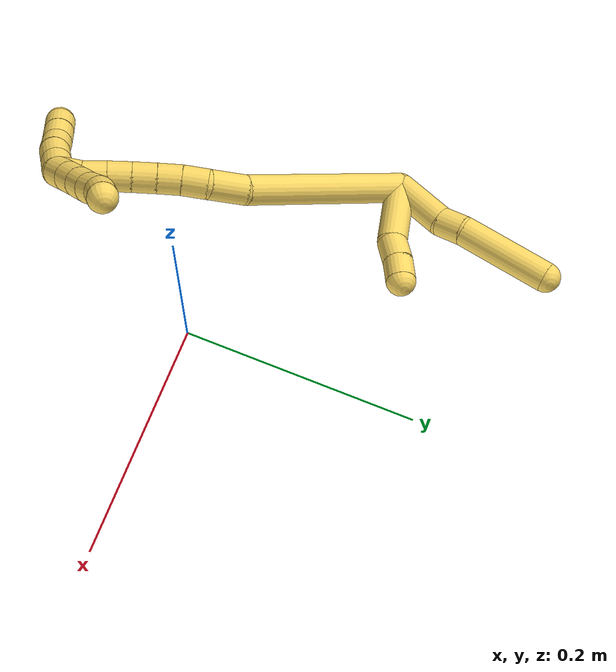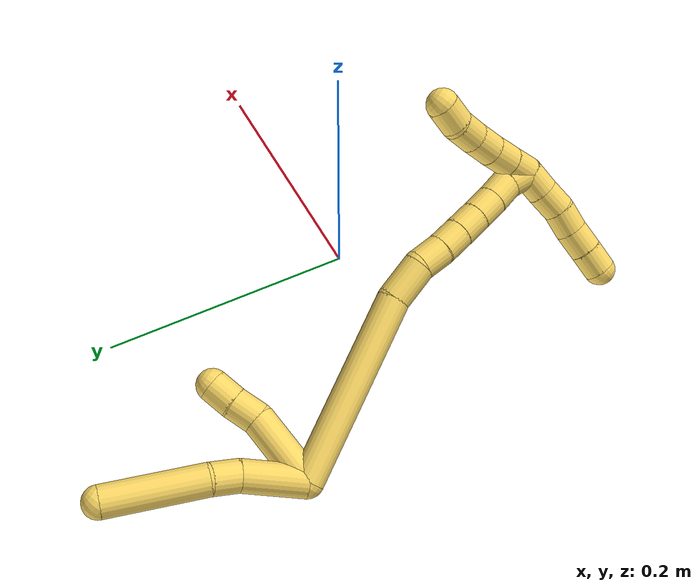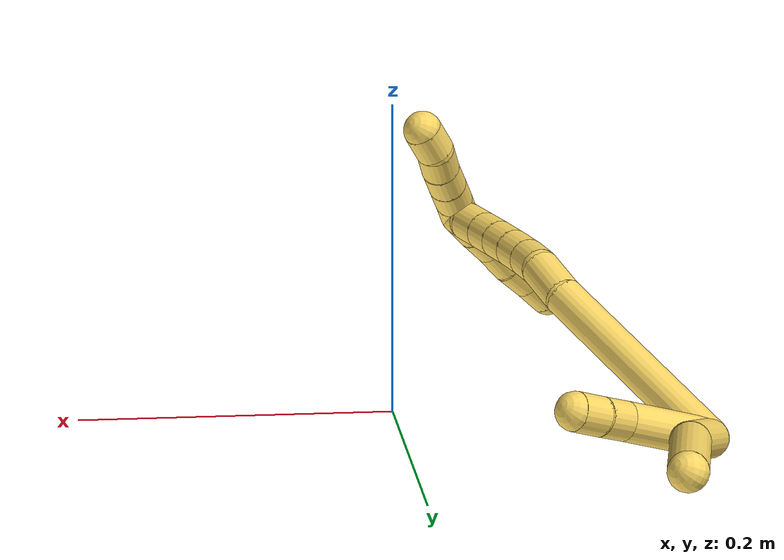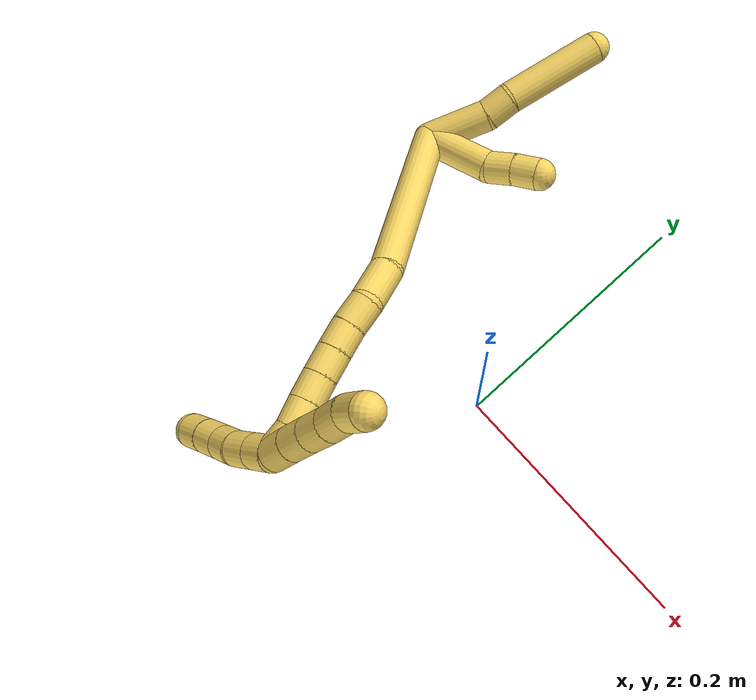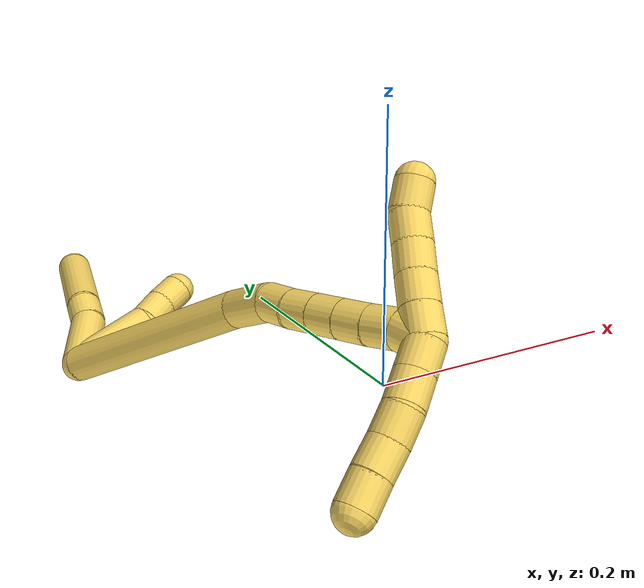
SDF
<sdf version="1.7">
 <world name="default">
  <model name="5">
   <static>0</static>
   <link name="5">
    <collision name="collision-cylinder-e_1_2_8">
     <pose>-0.000449 0.013087 -0.021009 -2.58447 -0.018137 0.063398</pose>
     <geometry><cylinder><radius>0.0125</radius><length>0.049511</length></cylinder></geometry>
     <surface>
      <friction><ode><mu>1.16</mu><mu2>1.16</mu2><slip1>0</slip1><slip2>0</slip2></ode></friction>
      <contact><ode><kp>1e+06</kp><kd>1</kd><max_vel>0</max_vel><min_depth>0.001</min_depth></ode></contact>
     </surface>
    </collision>
    <visual name="visual-cylinder-e_1_2_8">
     <pose>-0.000449 0.013087 -0.021009 -2.58447 -0.018137 0.063398</pose>
     <geometry><cylinder><radius>0.0125</radius><length>0.049511</length></cylinder></geometry>
     <material><ambient>1 0.858824 0.4 1</ambient></material>
    </visual>
    <collision name="collision-cylinder-e_2_8_9">
     <pose>0.001048 0.03366 -0.049963 -2.38604 0.176396 -0.438499</pose>
     <geometry><cylinder><radius>0.0125</radius><length>0.022177</length></cylinder></geometry>
     <surface>
      <friction><ode><mu>1.16</mu><mu2>1.16</mu2><slip1>0</slip1><slip2>0</slip2></ode></friction>
      <contact><ode><kp>1e+06</kp><kd>1</kd><max_vel>0</max_vel><min_depth>0.001</min_depth></ode></contact>
     </surface>
    </collision>
    <visual name="visual-cylinder-e_2_8_9">
     <pose>0.001048 0.03366 -0.049963 -2.38604 0.176396 -0.438499</pose>
     <geometry><cylinder><radius>0.0125</radius><length>0.022177</length></cylinder></geometry>
     <material><ambient>1 0.858824 0.4 1</ambient></material>
    </visual>
    <collision name="collision-cylinder-e_3_9_6">
     <pose>0.00218 0.070431 -0.083887 -2.29641 -0.020795 0.046237</pose>
     <geometry><cylinder><radius>0.0125</radius><length>0.078312</length></cylinder></geometry>
     <surface>
      <friction><ode><mu>1.16</mu><mu2>1.16</mu2><slip1>0</slip1><slip2>0</slip2></ode></friction>
      <contact><ode><kp>1e+06</kp><kd>1</kd><max_vel>0</max_vel><min_depth>0.001</min_depth></ode></contact>
     </surface>
    </collision>
    <visual name="visual-cylinder-e_3_9_6">
     <pose>0.00218 0.070431 -0.083887 -2.29641 -0.020795 0.046237</pose>
     <geometry><cylinder><radius>0.0125</radius><length>0.078312</length></cylinder></geometry>
     <material><ambient>1 0.858824 0.4 1</ambient></material>
    </visual>
    <collision name="collision-cylinder-e_1_2_10">
     <pose>-0.009143 -0.00757 -0.026629 2.86462 -0.318974 -1.7136</pose>
     <geometry><cylinder><radius>0.0125</radius><length>0.05831</length></cylinder></geometry>
     <surface>
      <friction><ode><mu>1.16</mu><mu2>1.16</mu2><slip1>0</slip1><slip2>0</slip2></ode></friction>
      <contact><ode><kp>1e+06</kp><kd>1</kd><max_vel>0</max_vel><min_depth>0.001</min_depth></ode></contact>
     </surface>
    </collision>
    <visual name="visual-cylinder-e_1_2_10">
     <pose>-0.009143 -0.00757 -0.026629 2.86462 -0.318974 -1.7136</pose>
     <geometry><cylinder><radius>0.0125</radius><length>0.05831</length></cylinder></geometry>
     <material><ambient>1 0.858824 0.4 1</ambient></material>
    </visual>
    <collision name="collision-cylinder-e_2_10_11">
     <pose>-0.020346 -0.014563 -0.063778 -3.08679 -0.193128 2.5901</pose>
     <geometry><cylinder><radius>0.0125</radius><length>0.021469</length></cylinder></geometry>
     <surface>
      <friction><ode><mu>1.16</mu><mu2>1.16</mu2><slip1>0</slip1><slip2>0</slip2></ode></friction>
      <contact><ode><kp>1e+06</kp><kd>1</kd><max_vel>0</max_vel><min_depth>0.001</min_depth></ode></contact>
     </surface>
    </collision>
    <visual name="visual-cylinder-e_2_10_11">
     <pose>-0.020346 -0.014563 -0.063778 -3.08679 -0.193128 2.5901</pose>
     <geometry><cylinder><radius>0.0125</radius><length>0.021469</length></cylinder></geometry>
     <material><ambient>1 0.858824 0.4 1</ambient></material>
    </visual>
    <collision name="collision-cylinder-e_3_11_5">
     <pose>-0.024683 -0.014493 -0.084135 3.09018 -0.227111 -2.69809</pose>
     <geometry><cylinder><radius>0.0125</radius><length>0.020221</length></cylinder></geometry>
     <surface>
      <friction><ode><mu>1.16</mu><mu2>1.16</mu2><slip1>0</slip1><slip2>0</slip2></ode></friction>
      <contact><ode><kp>1e+06</kp><kd>1</kd><max_vel>0</max_vel><min_depth>0.001</min_depth></ode></contact>
     </surface>
    </collision>
    <visual name="visual-cylinder-e_3_11_5">
     <pose>-0.024683 -0.014493 -0.084135 3.09018 -0.227111 -2.69809</pose>
     <geometry><cylinder><radius>0.0125</radius><length>0.020221</length></cylinder></geometry>
     <material><ambient>1 0.858824 0.4 1</ambient></material>
    </visual>
    <collision name="collision-cylinder-e_1_2_12">
     <pose>0.001783 -0.071736 -0.015209 1.77972 0.024314 0.030008</pose>
     <geometry><cylinder><radius>0.0125</radius><length>0.146704</length></cylinder></geometry>
     <surface>
      <friction><ode><mu>1.16</mu><mu2>1.16</mu2><slip1>0</slip1><slip2>0</slip2></ode></friction>
      <contact><ode><kp>1e+06</kp><kd>1</kd><max_vel>0</max_vel><min_depth>0.001</min_depth></ode></contact>
     </surface>
    </collision>
    <visual name="visual-cylinder-e_1_2_12">
     <pose>0.001783 -0.071736 -0.015209 1.77972 0.024314 0.030008</pose>
     <geometry><cylinder><radius>0.0125</radius><length>0.146704</length></cylinder></geometry>
     <material><ambient>1 0.858824 0.4 1</ambient></material>
    </visual>
    <collision name="collision-cylinder-e_2_12_13">
     <pose>0.004572 -0.159268 -0.030405 1.56997 0.063562 0.063509</pose>
     <geometry><cylinder><radius>0.0125</radius><length>0.031658</length></cylinder></geometry>
     <surface>
      <friction><ode><mu>1.16</mu><mu2>1.16</mu2><slip1>0</slip1><slip2>0</slip2></ode></friction>
      <contact><ode><kp>1e+06</kp><kd>1</kd><max_vel>0</max_vel><min_depth>0.001</min_depth></ode></contact>
     </surface>
    </collision>
    <visual name="visual-cylinder-e_2_12_13">
     <pose>0.004572 -0.159268 -0.030405 1.56997 0.063562 0.063509</pose>
     <geometry><cylinder><radius>0.0125</radius><length>0.031658</length></cylinder></geometry>
     <material><ambient>1 0.858824 0.4 1</ambient></material>
    </visual>
    <collision name="collision-cylinder-e_3_13_14">
     <pose>0.004288 -0.185355 -0.027365 1.28474 -0.119632 -0.08956</pose>
     <geometry><cylinder><radius>0.0125</radius><length>0.021605</length></cylinder></geometry>
     <surface>
      <friction><ode><mu>1.16</mu><mu2>1.16</mu2><slip1>0</slip1><slip2>0</slip2></ode></friction>
      <contact><ode><kp>1e+06</kp><kd>1</kd><max_vel>0</max_vel><min_depth>0.001</min_depth></ode></contact>
     </surface>
    </collision>
    <visual name="visual-cylinder-e_3_13_14">
     <pose>0.004288 -0.185355 -0.027365 1.28474 -0.119632 -0.08956</pose>
     <geometry><cylinder><radius>0.0125</radius><length>0.021605</length></cylinder></geometry>
     <material><ambient>1 0.858824 0.4 1</ambient></material>
    </visual>
    <collision name="collision-cylinder-e_4_14_15">
     <pose>0.001397 -0.205348 -0.022517 1.38522 -0.160874 -0.133572</pose>
     <geometry><cylinder><radius>0.0125</radius><length>0.020005</length></cylinder></geometry>
     <surface>
      <friction><ode><mu>1.16</mu><mu2>1.16</mu2><slip1>0</slip1><slip2>0</slip2></ode></friction>
      <contact><ode><kp>1e+06</kp><kd>1</kd><max_vel>0</max_vel><min_depth>0.001</min_depth></ode></contact>
     </surface>
    </collision>
    <visual name="visual-cylinder-e_4_14_15">
     <pose>0.001397 -0.205348 -0.022517 1.38522 -0.160874 -0.133572</pose>
     <geometry><cylinder><radius>0.0125</radius><length>0.020005</length></cylinder></geometry>
     <material><ambient>1 0.858824 0.4 1</ambient></material>
    </visual>
    <collision name="collision-cylinder-e_5_15_16">
     <pose>-0.001994 -0.224731 -0.018915 1.38886 -0.1798 -0.149862</pose>
     <geometry><cylinder><radius>0.0125</radius><length>0.020006</length></cylinder></geometry>
     <surface>
      <friction><ode><mu>1.16</mu><mu2>1.16</mu2><slip1>0</slip1><slip2>0</slip2></ode></friction>
      <contact><ode><kp>1e+06</kp><kd>1</kd><max_vel>0</max_vel><min_depth>0.001</min_depth></ode></contact>
     </surface>
    </collision>
    <visual name="visual-cylinder-e_5_15_16">
     <pose>-0.001994 -0.224731 -0.018915 1.38886 -0.1798 -0.149862</pose>
     <geometry><cylinder><radius>0.0125</radius><length>0.020006</length></cylinder></geometry>
     <material><ambient>1 0.858824 0.4 1</ambient></material>
    </visual>
    <collision name="collision-cylinder-e_6_16_17">
     <pose>-0.005706 -0.244086 -0.015481 1.40163 -0.193482 -0.163385</pose>
     <geometry><cylinder><radius>0.0125</radius><length>0.020006</length></cylinder></geometry>
     <surface>
      <friction><ode><mu>1.16</mu><mu2>1.16</mu2><slip1>0</slip1><slip2>0</slip2></ode></friction>
      <contact><ode><kp>1e+06</kp><kd>1</kd><max_vel>0</max_vel><min_depth>0.001</min_depth></ode></contact>
     </surface>
    </collision>
    <visual name="visual-cylinder-e_6_16_17">
     <pose>-0.005706 -0.244086 -0.015481 1.40163 -0.193482 -0.163385</pose>
     <geometry><cylinder><radius>0.0125</radius><length>0.020006</length></cylinder></geometry>
     <material><ambient>1 0.858824 0.4 1</ambient></material>
    </visual>
    <collision name="collision-cylinder-e_7_17_18">
     <pose>-0.009557 -0.263518 -0.012722 1.45787 -0.193844 -0.173212</pose>
     <geometry><cylinder><radius>0.0125</radius><length>0.02001</length></cylinder></geometry>
     <surface>
      <friction><ode><mu>1.16</mu><mu2>1.16</mu2><slip1>0</slip1><slip2>0</slip2></ode></friction>
      <contact><ode><kp>1e+06</kp><kd>1</kd><max_vel>0</max_vel><min_depth>0.001</min_depth></ode></contact>
     </surface>
    </collision>
    <visual name="visual-cylinder-e_7_17_18">
     <pose>-0.009557 -0.263518 -0.012722 1.45787 -0.193844 -0.173212</pose>
     <geometry><cylinder><radius>0.0125</radius><length>0.02001</length></cylinder></geometry>
     <material><ambient>1 0.858824 0.4 1</ambient></material>
    </visual>
    <collision name="collision-cylinder-e_8_18_1">
     <pose>-0.012979 -0.282361 -0.007713 1.16512 -0.149956 -0.098901</pose>
     <geometry><cylinder><radius>0.0125</radius><length>0.020006</length></cylinder></geometry>
     <surface>
      <friction><ode><mu>1.16</mu><mu2>1.16</mu2><slip1>0</slip1><slip2>0</slip2></ode></friction>
      <contact><ode><kp>1e+06</kp><kd>1</kd><max_vel>0</max_vel><min_depth>0.001</min_depth></ode></contact>
     </surface>
    </collision>
    <visual name="visual-cylinder-e_8_18_1">
     <pose>-0.012979 -0.282361 -0.007713 1.16512 -0.149956 -0.098901</pose>
     <geometry><cylinder><radius>0.0125</radius><length>0.020006</length></cylinder></geometry>
     <material><ambient>1 0.858824 0.4 1</ambient></material>
    </visual>
    <collision name="collision-cylinder-e_1_1_19">
     <pose>-0.010388 -0.288735 -0.012524 -2.83963 0.42084 -1.90369</pose>
     <geometry><cylinder><radius>0.0125</radius><length>0.02</length></cylinder></geometry>
     <surface>
      <friction><ode><mu>1.16</mu><mu2>1.16</mu2><slip1>0</slip1><slip2>0</slip2></ode></friction>
      <contact><ode><kp>1e+06</kp><kd>1</kd><max_vel>0</max_vel><min_depth>0.001</min_depth></ode></contact>
     </surface>
    </collision>
    <visual name="visual-cylinder-e_1_1_19">
     <pose>-0.010388 -0.288735 -0.012524 -2.83963 0.42084 -1.90369</pose>
     <geometry><cylinder><radius>0.0125</radius><length>0.02</length></cylinder></geometry>
     <material><ambient>1 0.858824 0.4 1</ambient></material>
    </visual>
    <collision name="collision-cylinder-e_2_19_20">
     <pose>-0.002331 -0.283497 -0.030062 -2.863 0.408428 -1.95138</pose>
     <geometry><cylinder><radius>0.0125</radius><length>0.02</length></cylinder></geometry>
     <surface>
      <friction><ode><mu>1.16</mu><mu2>1.16</mu2><slip1>0</slip1><slip2>0</slip2></ode></friction>
      <contact><ode><kp>1e+06</kp><kd>1</kd><max_vel>0</max_vel><min_depth>0.001</min_depth></ode></contact>
     </surface>
    </collision>
    <visual name="visual-cylinder-e_2_19_20">
     <pose>-0.002331 -0.283497 -0.030062 -2.863 0.408428 -1.95138</pose>
     <geometry><cylinder><radius>0.0125</radius><length>0.02</length></cylinder></geometry>
     <material><ambient>1 0.858824 0.4 1</ambient></material>
    </visual>
    <collision name="collision-cylinder-e_3_20_21">
     <pose>0.005753 -0.278844 -0.047749 -2.90584 0.423822 -2.13521</pose>
     <geometry><cylinder><radius>0.0125</radius><length>0.02</length></cylinder></geometry>
     <surface>
      <friction><ode><mu>1.16</mu><mu2>1.16</mu2><slip1>0</slip1><slip2>0</slip2></ode></friction>
      <contact><ode><kp>1e+06</kp><kd>1</kd><max_vel>0</max_vel><min_depth>0.001</min_depth></ode></contact>
     </surface>
    </collision>
    <visual name="visual-cylinder-e_3_20_21">
     <pose>0.005753 -0.278844 -0.047749 -2.90584 0.423822 -2.13521</pose>
     <geometry><cylinder><radius>0.0125</radius><length>0.02</length></cylinder></geometry>
     <material><ambient>1 0.858824 0.4 1</ambient></material>
    </visual>
    <collision name="collision-cylinder-e_4_21_22">
     <pose>0.014676 -0.274763 -0.065159 -2.91715 0.501822 -2.31313</pose>
     <geometry><cylinder><radius>0.0125</radius><length>0.02</length></cylinder></geometry>
     <surface>
      <friction><ode><mu>1.16</mu><mu2>1.16</mu2><slip1>0</slip1><slip2>0</slip2></ode></friction>
      <contact><ode><kp>1e+06</kp><kd>1</kd><max_vel>0</max_vel><min_depth>0.001</min_depth></ode></contact>
     </surface>
    </collision>
    <visual name="visual-cylinder-e_4_21_22">
     <pose>0.014676 -0.274763 -0.065159 -2.91715 0.501822 -2.31313</pose>
     <geometry><cylinder><radius>0.0125</radius><length>0.02</length></cylinder></geometry>
     <material><ambient>1 0.858824 0.4 1</ambient></material>
    </visual>
    <collision name="collision-cylinder-e_5_22_4">
     <pose>0.02335 -0.273607 -0.082895 3.05527 0.396679 2.71826</pose>
     <geometry><cylinder><radius>0.0125</radius><length>0.02</length></cylinder></geometry>
     <surface>
      <friction><ode><mu>1.16</mu><mu2>1.16</mu2><slip1>0</slip1><slip2>0</slip2></ode></friction>
      <contact><ode><kp>1e+06</kp><kd>1</kd><max_vel>0</max_vel><min_depth>0.001</min_depth></ode></contact>
     </surface>
    </collision>
    <visual name="visual-cylinder-e_5_22_4">
     <pose>0.02335 -0.273607 -0.082895 3.05527 0.396679 2.71826</pose>
     <geometry><cylinder><radius>0.0125</radius><length>0.02</length></cylinder></geometry>
     <material><ambient>1 0.858824 0.4 1</ambient></material>
    </visual>
    <collision name="collision-cylinder-e_1_1_23">
     <pose>-0.016548 -0.290446 0.005921 -0.102713 -0.20898 0.010781</pose>
     <geometry><cylinder><radius>0.0125</radius><length>0.02</length></cylinder></geometry>
     <surface>
      <friction><ode><mu>1.16</mu><mu2>1.16</mu2><slip1>0</slip1><slip2>0</slip2></ode></friction>
      <contact><ode><kp>1e+06</kp><kd>1</kd><max_vel>0</max_vel><min_depth>0.001</min_depth></ode></contact>
     </surface>
    </collision>
    <visual name="visual-cylinder-e_1_1_23">
     <pose>-0.016548 -0.290446 0.005921 -0.102713 -0.20898 0.010781</pose>
     <geometry><cylinder><radius>0.0125</radius><length>0.02</length></cylinder></geometry>
     <material><ambient>1 0.858824 0.4 1</ambient></material>
    </visual>
    <collision name="collision-cylinder-e_2_23_24">
     <pose>-0.020326 -0.288753 0.025482 -0.070076 -0.171188 0.006015</pose>
     <geometry><cylinder><radius>0.0125</radius><length>0.02</length></cylinder></geometry>
     <surface>
      <friction><ode><mu>1.16</mu><mu2>1.16</mu2><slip1>0</slip1><slip2>0</slip2></ode></friction>
      <contact><ode><kp>1e+06</kp><kd>1</kd><max_vel>0</max_vel><min_depth>0.001</min_depth></ode></contact>
     </surface>
    </collision>
    <visual name="visual-cylinder-e_2_23_24">
     <pose>-0.020326 -0.288753 0.025482 -0.070076 -0.171188 0.006015</pose>
     <geometry><cylinder><radius>0.0125</radius><length>0.02</length></cylinder></geometry>
     <material><ambient>1 0.858824 0.4 1</ambient></material>
    </visual>
    <collision name="collision-cylinder-e_3_24_25">
     <pose>-0.024247 -0.285615 0.04475 -0.25383 -0.223549 0.028642</pose>
     <geometry><cylinder><radius>0.0125</radius><length>0.02</length></cylinder></geometry>
     <surface>
      <friction><ode><mu>1.16</mu><mu2>1.16</mu2><slip1>0</slip1><slip2>0</slip2></ode></friction>
      <contact><ode><kp>1e+06</kp><kd>1</kd><max_vel>0</max_vel><min_depth>0.001</min_depth></ode></contact>
     </surface>
    </collision>
    <visual name="visual-cylinder-e_3_24_25">
     <pose>-0.024247 -0.285615 0.04475 -0.25383 -0.223549 0.028642</pose>
     <geometry><cylinder><radius>0.0125</radius><length>0.02</length></cylinder></geometry>
     <material><ambient>1 0.858824 0.4 1</ambient></material>
    </visual>
    <collision name="collision-cylinder-e_4_25_26">
     <pose>-0.02748 -0.281072 0.063914 -0.212138 -0.10182 0.01085</pose>
     <geometry><cylinder><radius>0.0125</radius><length>0.02</length></cylinder></geometry>
     <surface>
      <friction><ode><mu>1.16</mu><mu2>1.16</mu2><slip1>0</slip1><slip2>0</slip2></ode></friction>
      <contact><ode><kp>1e+06</kp><kd>1</kd><max_vel>0</max_vel><min_depth>0.001</min_depth></ode></contact>
     </surface>
    </collision>
    <visual name="visual-cylinder-e_4_25_26">
     <pose>-0.02748 -0.281072 0.063914 -0.212138 -0.10182 0.01085</pose>
     <geometry><cylinder><radius>0.0125</radius><length>0.02</length></cylinder></geometry>
     <material><ambient>1 0.858824 0.4 1</ambient></material>
    </visual>
    <collision name="collision-cylinder-e_5_26_3">
     <pose>-0.029991 -0.276989 0.083325 -0.202478 -0.149987 0.015265</pose>
     <geometry><cylinder><radius>0.0125</radius><length>0.02</length></cylinder></geometry>
     <surface>
      <friction><ode><mu>1.16</mu><mu2>1.16</mu2><slip1>0</slip1><slip2>0</slip2></ode></friction>
      <contact><ode><kp>1e+06</kp><kd>1</kd><max_vel>0</max_vel><min_depth>0.001</min_depth></ode></contact>
     </surface>
    </collision>
    <visual name="visual-cylinder-e_5_26_3">
     <pose>-0.029991 -0.276989 0.083325 -0.202478 -0.149987 0.015265</pose>
     <geometry><cylinder><radius>0.0125</radius><length>0.02</length></cylinder></geometry>
     <material><ambient>1 0.858824 0.4 1</ambient></material>
    </visual>
    <collision name="collision-sphere-3">
     <pose>-0.031485 -0.275 0.093011 0 -0 0</pose>
     <geometry><sphere><radius>0.0125</radius></sphere></geometry>
     <surface>
      <friction><ode><mu>1.16</mu><mu2>1.16</mu2><slip1>0</slip1><slip2>0</slip2></ode></friction>
      <contact><ode><kp>1e+06</kp><kd>1</kd><max_vel>0</max_vel><min_depth>0.001</min_depth></ode></contact>
     </surface>
    </collision>
    <visual name="visual-sphere-3">
     <pose>-0.031485 -0.275 0.093011 0 -0 0</pose>
     <geometry><sphere><radius>0.0125</radius></sphere></geometry>
     <material><ambient>1 0.858824 0.4 1</ambient></material>
    </visual>
    <collision name="collision-sphere-26">
     <pose>-0.028496 -0.278977 0.073639 0 -0 0</pose>
     <geometry><sphere><radius>0.0125</radius></sphere></geometry>
     <surface>
      <friction><ode><mu>1.16</mu><mu2>1.16</mu2><slip1>0</slip1><slip2>0</slip2></ode></friction>
      <contact><ode><kp>1e+06</kp><kd>1</kd><max_vel>0</max_vel><min_depth>0.001</min_depth></ode></contact>
     </surface>
    </collision>
    <visual name="visual-sphere-26">
     <pose>-0.028496 -0.278977 0.073639 0 -0 0</pose>
     <geometry><sphere><radius>0.0125</radius></sphere></geometry>
     <material><ambient>1 0.858824 0.4 1</ambient></material>
    </visual>
    <collision name="collision-sphere-25">
     <pose>-0.026463 -0.283166 0.054189 0 -0 0</pose>
     <geometry><sphere><radius>0.0125</radius></sphere></geometry>
     <surface>
      <friction><ode><mu>1.16</mu><mu2>1.16</mu2><slip1>0</slip1><slip2>0</slip2></ode></friction>
      <contact><ode><kp>1e+06</kp><kd>1</kd><max_vel>0</max_vel><min_depth>0.001</min_depth></ode></contact>
     </surface>
    </collision>
    <visual name="visual-sphere-25">
     <pose>-0.026463 -0.283166 0.054189 0 -0 0</pose>
     <geometry><sphere><radius>0.0125</radius></sphere></geometry>
     <material><ambient>1 0.858824 0.4 1</ambient></material>
    </visual>
    <collision name="collision-sphere-24">
     <pose>-0.02203 -0.288063 0.035312 0 -0 0</pose>
     <geometry><sphere><radius>0.0125</radius></sphere></geometry>
     <surface>
      <friction><ode><mu>1.16</mu><mu2>1.16</mu2><slip1>0</slip1><slip2>0</slip2></ode></friction>
      <contact><ode><kp>1e+06</kp><kd>1</kd><max_vel>0</max_vel><min_depth>0.001</min_depth></ode></contact>
     </surface>
    </collision>
    <visual name="visual-sphere-24">
     <pose>-0.02203 -0.288063 0.035312 0 -0 0</pose>
     <geometry><sphere><radius>0.0125</radius></sphere></geometry>
     <material><ambient>1 0.858824 0.4 1</ambient></material>
    </visual>
    <collision name="collision-sphere-23">
     <pose>-0.018623 -0.289443 0.015652 0 -0 0</pose>
     <geometry><sphere><radius>0.0125</radius></sphere></geometry>
     <surface>
      <friction><ode><mu>1.16</mu><mu2>1.16</mu2><slip1>0</slip1><slip2>0</slip2></ode></friction>
      <contact><ode><kp>1e+06</kp><kd>1</kd><max_vel>0</max_vel><min_depth>0.001</min_depth></ode></contact>
     </surface>
    </collision>
    <visual name="visual-sphere-23">
     <pose>-0.018623 -0.289443 0.015652 0 -0 0</pose>
     <geometry><sphere><radius>0.0125</radius></sphere></geometry>
     <material><ambient>1 0.858824 0.4 1</ambient></material>
    </visual>
    <collision name="collision-sphere-4">
     <pose>0.027213 -0.274403 -0.092085 0 -0 0</pose>
     <geometry><sphere><radius>0.0125</radius></sphere></geometry>
     <surface>
      <friction><ode><mu>1.16</mu><mu2>1.16</mu2><slip1>0</slip1><slip2>0</slip2></ode></friction>
      <contact><ode><kp>1e+06</kp><kd>1</kd><max_vel>0</max_vel><min_depth>0.001</min_depth></ode></contact>
     </surface>
    </collision>
    <visual name="visual-sphere-4">
     <pose>0.027213 -0.274403 -0.092085 0 -0 0</pose>
     <geometry><sphere><radius>0.0125</radius></sphere></geometry>
     <material><ambient>1 0.858824 0.4 1</ambient></material>
    </visual>
    <collision name="collision-sphere-22">
     <pose>0.019486 -0.272812 -0.073706 0 -0 0</pose>
     <geometry><sphere><radius>0.0125</radius></sphere></geometry>
     <surface>
      <friction><ode><mu>1.16</mu><mu2>1.16</mu2><slip1>0</slip1><slip2>0</slip2></ode></friction>
      <contact><ode><kp>1e+06</kp><kd>1</kd><max_vel>0</max_vel><min_depth>0.001</min_depth></ode></contact>
     </surface>
    </collision>
    <visual name="visual-sphere-22">
     <pose>0.019486 -0.272812 -0.073706 0 -0 0</pose>
     <geometry><sphere><radius>0.0125</radius></sphere></geometry>
     <material><ambient>1 0.858824 0.4 1</ambient></material>
    </visual>
    <collision name="collision-sphere-21">
     <pose>0.009866 -0.276715 -0.056612 0 -0 0</pose>
     <geometry><sphere><radius>0.0125</radius></sphere></geometry>
     <surface>
      <friction><ode><mu>1.16</mu><mu2>1.16</mu2><slip1>0</slip1><slip2>0</slip2></ode></friction>
      <contact><ode><kp>1e+06</kp><kd>1</kd><max_vel>0</max_vel><min_depth>0.001</min_depth></ode></contact>
     </surface>
    </collision>
    <visual name="visual-sphere-21">
     <pose>0.009866 -0.276715 -0.056612 0 -0 0</pose>
     <geometry><sphere><radius>0.0125</radius></sphere></geometry>
     <material><ambient>1 0.858824 0.4 1</ambient></material>
    </visual>
    <collision name="collision-sphere-20">
     <pose>0.001641 -0.280973 -0.038886 0 -0 0</pose>
     <geometry><sphere><radius>0.0125</radius></sphere></geometry>
     <surface>
      <friction><ode><mu>1.16</mu><mu2>1.16</mu2><slip1>0</slip1><slip2>0</slip2></ode></friction>
      <contact><ode><kp>1e+06</kp><kd>1</kd><max_vel>0</max_vel><min_depth>0.001</min_depth></ode></contact>
     </surface>
    </collision>
    <visual name="visual-sphere-20">
     <pose>0.001641 -0.280973 -0.038886 0 -0 0</pose>
     <geometry><sphere><radius>0.0125</radius></sphere></geometry>
     <material><ambient>1 0.858824 0.4 1</ambient></material>
    </visual>
    <collision name="collision-sphere-11">
     <pose>-0.022406 -0.013986 -0.074297 0 -0 0</pose>
     <geometry><sphere><radius>0.0125</radius></sphere></geometry>
     <surface>
      <friction><ode><mu>1.16</mu><mu2>1.16</mu2><slip1>0</slip1><slip2>0</slip2></ode></friction>
      <contact><ode><kp>1e+06</kp><kd>1</kd><max_vel>0</max_vel><min_depth>0.001</min_depth></ode></contact>
     </surface>
    </collision>
    <visual name="visual-sphere-11">
     <pose>-0.022406 -0.013986 -0.074297 0 -0 0</pose>
     <geometry><sphere><radius>0.0125</radius></sphere></geometry>
     <material><ambient>1 0.858824 0.4 1</ambient></material>
    </visual>
    <collision name="collision-sphere-10">
     <pose>-0.018286 -0.01514 -0.053258 0 -0 0</pose>
     <geometry><sphere><radius>0.0125</radius></sphere></geometry>
     <surface>
      <friction><ode><mu>1.16</mu><mu2>1.16</mu2><slip1>0</slip1><slip2>0</slip2></ode></friction>
      <contact><ode><kp>1e+06</kp><kd>1</kd><max_vel>0</max_vel><min_depth>0.001</min_depth></ode></contact>
     </surface>
    </collision>
    <visual name="visual-sphere-10">
     <pose>-0.018286 -0.01514 -0.053258 0 -0 0</pose>
     <geometry><sphere><radius>0.0125</radius></sphere></geometry>
     <material><ambient>1 0.858824 0.4 1</ambient></material>
    </visual>
    <collision name="collision-sphere-6">
     <pose>0.001365 0.099717 -0.109865 0 -0 0</pose>
     <geometry><sphere><radius>0.0125</radius></sphere></geometry>
     <surface>
      <friction><ode><mu>1.16</mu><mu2>1.16</mu2><slip1>0</slip1><slip2>0</slip2></ode></friction>
      <contact><ode><kp>1e+06</kp><kd>1</kd><max_vel>0</max_vel><min_depth>0.001</min_depth></ode></contact>
     </surface>
    </collision>
    <visual name="visual-sphere-6">
     <pose>0.001365 0.099717 -0.109865 0 -0 0</pose>
     <geometry><sphere><radius>0.0125</radius></sphere></geometry>
     <material><ambient>1 0.858824 0.4 1</ambient></material>
    </visual>
    <collision name="collision-sphere-9">
     <pose>0.002994 0.041145 -0.057909 0 -0 0</pose>
     <geometry><sphere><radius>0.0125</radius></sphere></geometry>
     <surface>
      <friction><ode><mu>1.16</mu><mu2>1.16</mu2><slip1>0</slip1><slip2>0</slip2></ode></friction>
      <contact><ode><kp>1e+06</kp><kd>1</kd><max_vel>0</max_vel><min_depth>0.001</min_depth></ode></contact>
     </surface>
    </collision>
    <visual name="visual-sphere-9">
     <pose>0.002994 0.041145 -0.057909 0 -0 0</pose>
     <geometry><sphere><radius>0.0125</radius></sphere></geometry>
     <material><ambient>1 0.858824 0.4 1</ambient></material>
    </visual>
    <collision name="collision-sphere-2">
     <geometry><sphere><radius>0.0125</radius></sphere></geometry>
     <surface>
      <friction><ode><mu>1.16</mu><mu2>1.16</mu2><slip1>0</slip1><slip2>0</slip2></ode></friction>
      <contact><ode><kp>1e+06</kp><kd>1</kd><max_vel>0</max_vel><min_depth>0.001</min_depth></ode></contact>
     </surface>
    </collision>
    <visual name="visual-sphere-2">
     <geometry><sphere><radius>0.0125</radius></sphere></geometry>
     <material><ambient>1 0.858824 0.4 1</ambient></material>
    </visual>
    <collision name="collision-sphere-19">
     <pose>-0.006303 -0.28602 -0.021238 0 -0 0</pose>
     <geometry><sphere><radius>0.0125</radius></sphere></geometry>
     <surface>
      <friction><ode><mu>1.16</mu><mu2>1.16</mu2><slip1>0</slip1><slip2>0</slip2></ode></friction>
      <contact><ode><kp>1e+06</kp><kd>1</kd><max_vel>0</max_vel><min_depth>0.001</min_depth></ode></contact>
     </surface>
    </collision>
    <visual name="visual-sphere-19">
     <pose>-0.006303 -0.28602 -0.021238 0 -0 0</pose>
     <geometry><sphere><radius>0.0125</radius></sphere></geometry>
     <material><ambient>1 0.858824 0.4 1</ambient></material>
    </visual>
    <collision name="collision-sphere-8">
     <pose>-0.000898 0.026174 -0.042017 0 -0 0</pose>
     <geometry><sphere><radius>0.0125</radius></sphere></geometry>
     <surface>
      <friction><ode><mu>1.16</mu><mu2>1.16</mu2><slip1>0</slip1><slip2>0</slip2></ode></friction>
      <contact><ode><kp>1e+06</kp><kd>1</kd><max_vel>0</max_vel><min_depth>0.001</min_depth></ode></contact>
     </surface>
    </collision>
    <visual name="visual-sphere-8">
     <pose>-0.000898 0.026174 -0.042017 0 -0 0</pose>
     <geometry><sphere><radius>0.0125</radius></sphere></geometry>
     <material><ambient>1 0.858824 0.4 1</ambient></material>
    </visual>
    <collision name="collision-sphere-5">
     <pose>-0.026959 -0.014999 -0.093972 0 -0 0</pose>
     <geometry><sphere><radius>0.0125</radius></sphere></geometry>
     <surface>
      <friction><ode><mu>1.16</mu><mu2>1.16</mu2><slip1>0</slip1><slip2>0</slip2></ode></friction>
      <contact><ode><kp>1e+06</kp><kd>1</kd><max_vel>0</max_vel><min_depth>0.001</min_depth></ode></contact>
     </surface>
    </collision>
    <visual name="visual-sphere-5">
     <pose>-0.026959 -0.014999 -0.093972 0 -0 0</pose>
     <geometry><sphere><radius>0.0125</radius></sphere></geometry>
     <material><ambient>1 0.858824 0.4 1</ambient></material>
    </visual>
    <collision name="collision-sphere-12">
     <pose>0.003567 -0.143471 -0.030418 0 -0 0</pose>
     <geometry><sphere><radius>0.0125</radius></sphere></geometry>
     <surface>
      <friction><ode><mu>1.16</mu><mu2>1.16</mu2><slip1>0</slip1><slip2>0</slip2></ode></friction>
      <contact><ode><kp>1e+06</kp><kd>1</kd><max_vel>0</max_vel><min_depth>0.001</min_depth></ode></contact>
     </surface>
    </collision>
    <visual name="visual-sphere-12">
     <pose>0.003567 -0.143471 -0.030418 0 -0 0</pose>
     <geometry><sphere><radius>0.0125</radius></sphere></geometry>
     <material><ambient>1 0.858824 0.4 1</ambient></material>
    </visual>
    <collision name="collision-sphere-13">
     <pose>0.005577 -0.175065 -0.030392 0 -0 0</pose>
     <geometry><sphere><radius>0.0125</radius></sphere></geometry>
     <surface>
      <friction><ode><mu>1.16</mu><mu2>1.16</mu2><slip1>0</slip1><slip2>0</slip2></ode></friction>
      <contact><ode><kp>1e+06</kp><kd>1</kd><max_vel>0</max_vel><min_depth>0.001</min_depth></ode></contact>
     </surface>
    </collision>
    <visual name="visual-sphere-13">
     <pose>0.005577 -0.175065 -0.030392 0 -0 0</pose>
     <geometry><sphere><radius>0.0125</radius></sphere></geometry>
     <material><ambient>1 0.858824 0.4 1</ambient></material>
    </visual>
    <collision name="collision-sphere-14">
     <pose>0.002999 -0.195644 -0.024339 0 -0 0</pose>
     <geometry><sphere><radius>0.0125</radius></sphere></geometry>
     <surface>
      <friction><ode><mu>1.16</mu><mu2>1.16</mu2><slip1>0</slip1><slip2>0</slip2></ode></friction>
      <contact><ode><kp>1e+06</kp><kd>1</kd><max_vel>0</max_vel><min_depth>0.001</min_depth></ode></contact>
     </surface>
    </collision>
    <visual name="visual-sphere-14">
     <pose>0.002999 -0.195644 -0.024339 0 -0 0</pose>
     <geometry><sphere><radius>0.0125</radius></sphere></geometry>
     <material><ambient>1 0.858824 0.4 1</ambient></material>
    </visual>
    <collision name="collision-sphere-15">
     <pose>-0.000205 -0.215052 -0.020696 0 -0 0</pose>
     <geometry><sphere><radius>0.0125</radius></sphere></geometry>
     <surface>
      <friction><ode><mu>1.16</mu><mu2>1.16</mu2><slip1>0</slip1><slip2>0</slip2></ode></friction>
      <contact><ode><kp>1e+06</kp><kd>1</kd><max_vel>0</max_vel><min_depth>0.001</min_depth></ode></contact>
     </surface>
    </collision>
    <visual name="visual-sphere-15">
     <pose>-0.000205 -0.215052 -0.020696 0 -0 0</pose>
     <geometry><sphere><radius>0.0125</radius></sphere></geometry>
     <material><ambient>1 0.858824 0.4 1</ambient></material>
    </visual>
    <collision name="collision-sphere-16">
     <pose>-0.003783 -0.23441 -0.017134 0 -0 0</pose>
     <geometry><sphere><radius>0.0125</radius></sphere></geometry>
     <surface>
      <friction><ode><mu>1.16</mu><mu2>1.16</mu2><slip1>0</slip1><slip2>0</slip2></ode></friction>
      <contact><ode><kp>1e+06</kp><kd>1</kd><max_vel>0</max_vel><min_depth>0.001</min_depth></ode></contact>
     </surface>
    </collision>
    <visual name="visual-sphere-16">
     <pose>-0.003783 -0.23441 -0.017134 0 -0 0</pose>
     <geometry><sphere><radius>0.0125</radius></sphere></geometry>
     <material><ambient>1 0.858824 0.4 1</ambient></material>
    </visual>
    <collision name="collision-sphere-17">
     <pose>-0.00763 -0.253763 -0.013829 0 -0 0</pose>
     <geometry><sphere><radius>0.0125</radius></sphere></geometry>
     <surface>
      <friction><ode><mu>1.16</mu><mu2>1.16</mu2><slip1>0</slip1><slip2>0</slip2></ode></friction>
      <contact><ode><kp>1e+06</kp><kd>1</kd><max_vel>0</max_vel><min_depth>0.001</min_depth></ode></contact>
     </surface>
    </collision>
    <visual name="visual-sphere-17">
     <pose>-0.00763 -0.253763 -0.013829 0 -0 0</pose>
     <geometry><sphere><radius>0.0125</radius></sphere></geometry>
     <material><ambient>1 0.858824 0.4 1</ambient></material>
    </visual>
    <collision name="collision-sphere-18">
     <pose>-0.011485 -0.273273 -0.011616 0 -0 0</pose>
     <geometry><sphere><radius>0.0125</radius></sphere></geometry>
     <surface>
      <friction><ode><mu>1.16</mu><mu2>1.16</mu2><slip1>0</slip1><slip2>0</slip2></ode></friction>
      <contact><ode><kp>1e+06</kp><kd>1</kd><max_vel>0</max_vel><min_depth>0.001</min_depth></ode></contact>
     </surface>
    </collision>
    <visual name="visual-sphere-18">
     <pose>-0.011485 -0.273273 -0.011616 0 -0 0</pose>
     <geometry><sphere><radius>0.0125</radius></sphere></geometry>
     <material><ambient>1 0.858824 0.4 1</ambient></material>
    </visual>
    <collision name="collision-sphere-1">
     <pose>-0.014473 -0.291449 -0.003809 0 -0 0</pose>
     <geometry><sphere><radius>0.0125</radius></sphere></geometry>
     <surface>
      <friction><ode><mu>1.16</mu><mu2>1.16</mu2><slip1>0</slip1><slip2>0</slip2></ode></friction>
      <contact><ode><kp>1e+06</kp><kd>1</kd><max_vel>0</max_vel><min_depth>0.001</min_depth></ode></contact>
     </surface>
    </collision>
    <visual name="visual-sphere-1">
     <pose>-0.014473 -0.291449 -0.003809 0 -0 0</pose>
     <geometry><sphere><radius>0.0125</radius></sphere></geometry>
     <material><ambient>1 0.858824 0.4 1</ambient></material>
    </visual>
    <inertial>
     <pose>-0.004168 -0.126084 -0.025298 0 -0 0</pose>
     <mass>0.75</mass>
     <inertia>
      <ixx>0.000323</ixx>
      <ixy>0</ixy>
      <ixz>0</ixz>
      <iyy>-0.0001</iyy>
      <iyz>0</iyz>
      <izz>0.000223</izz>
     </inertia>
    </inertial>
   </link>
   <pose>-0.182878 0.117542 0.0118 -2.55848 -0.942137 3.07512</pose>
  </model>
 </world>
</sdf>
